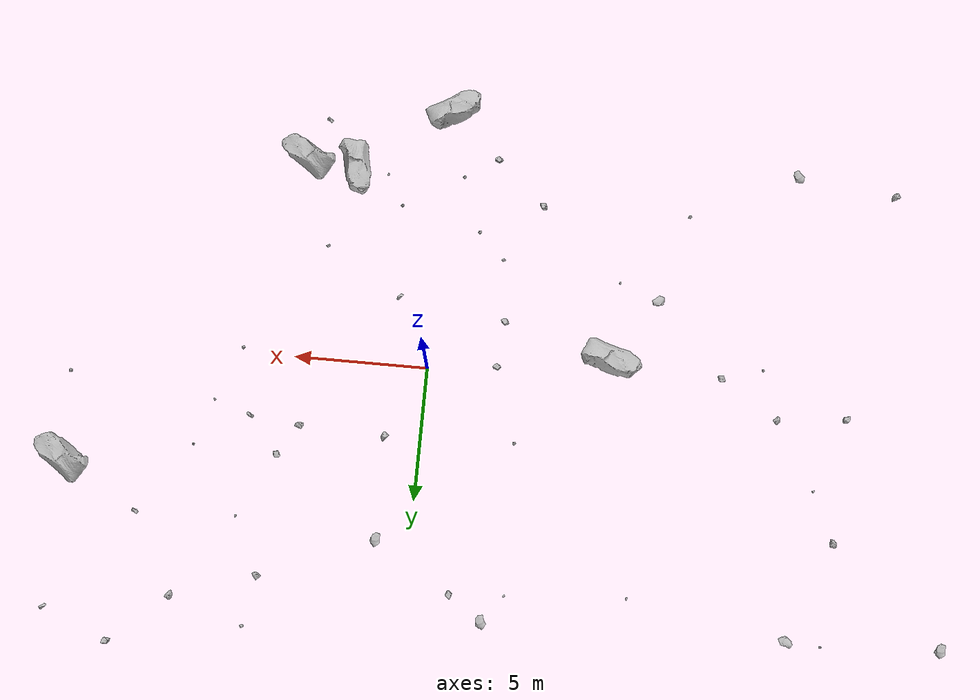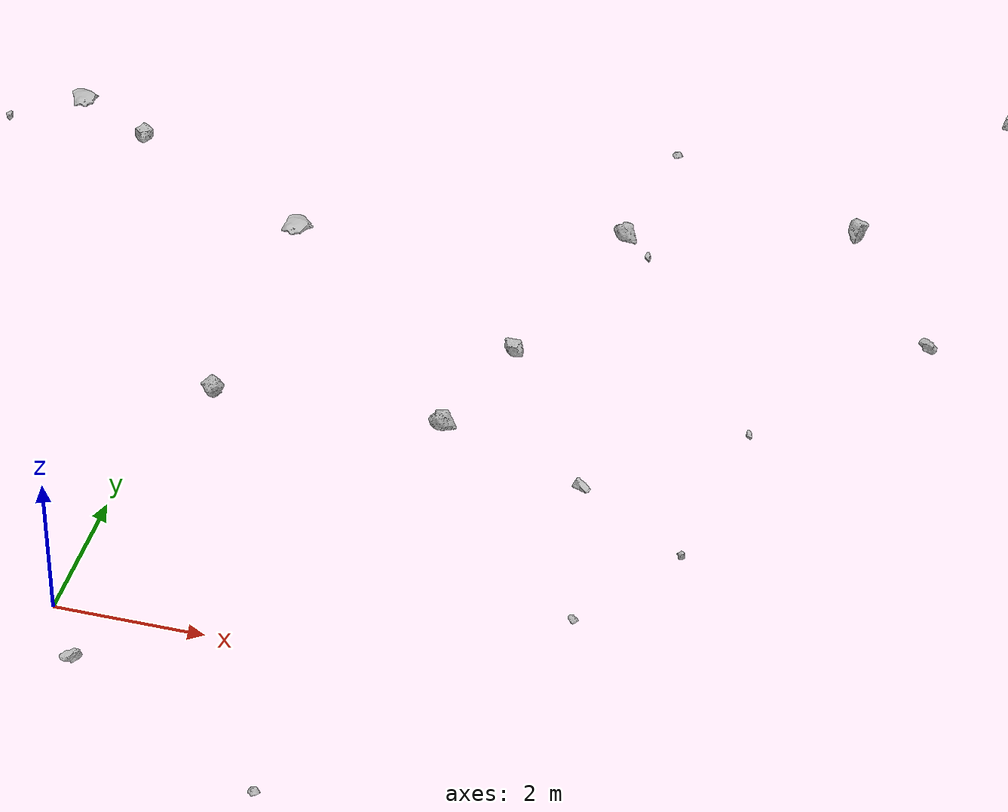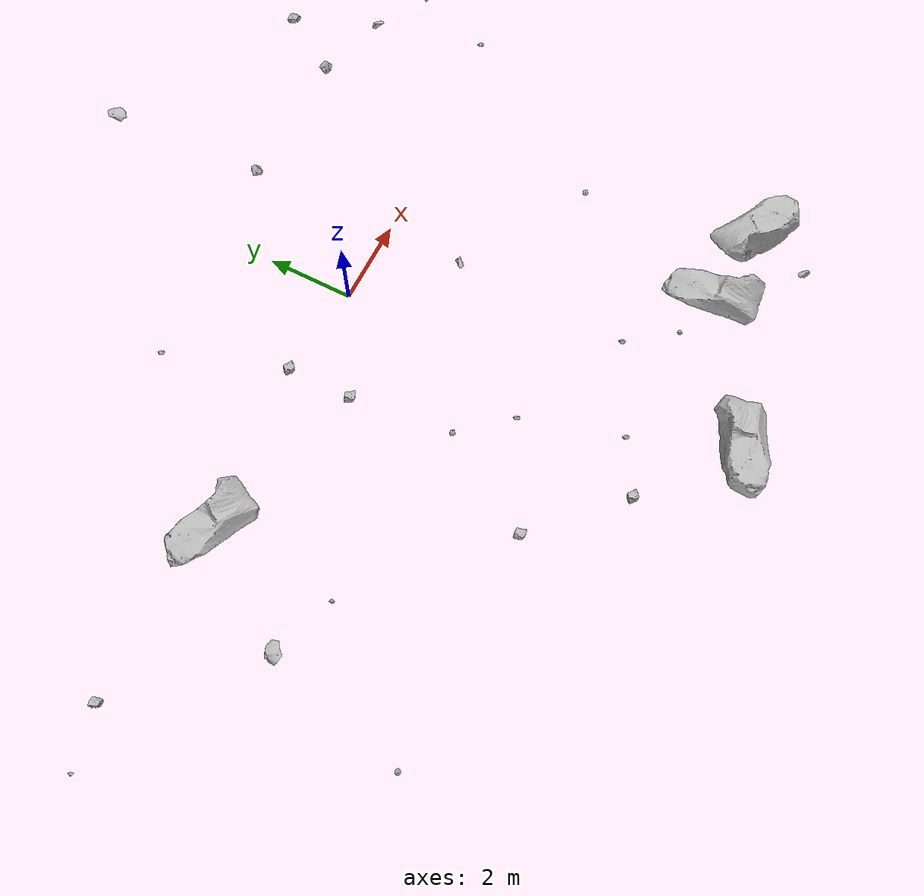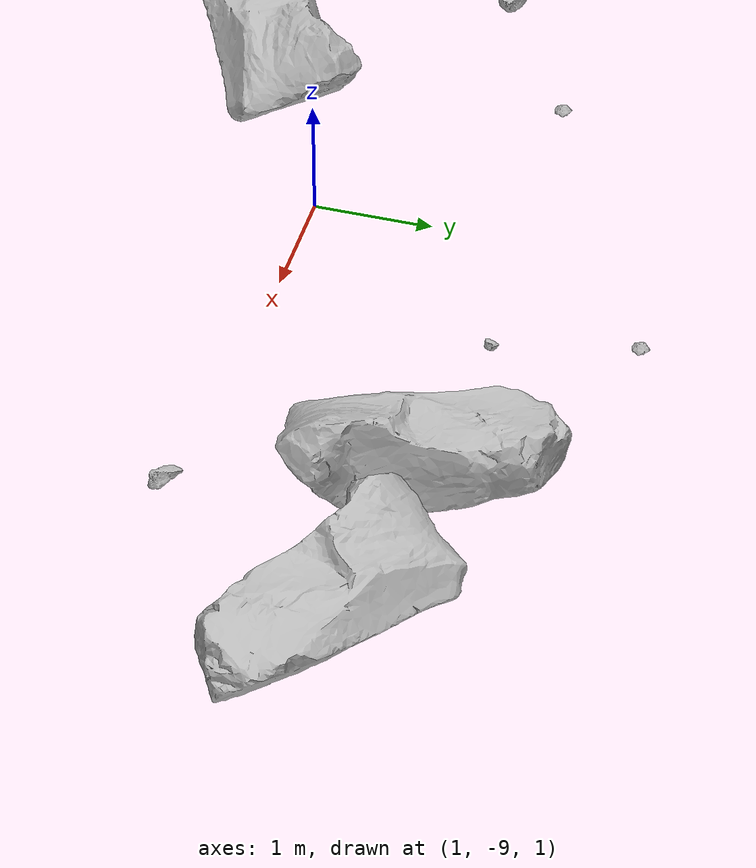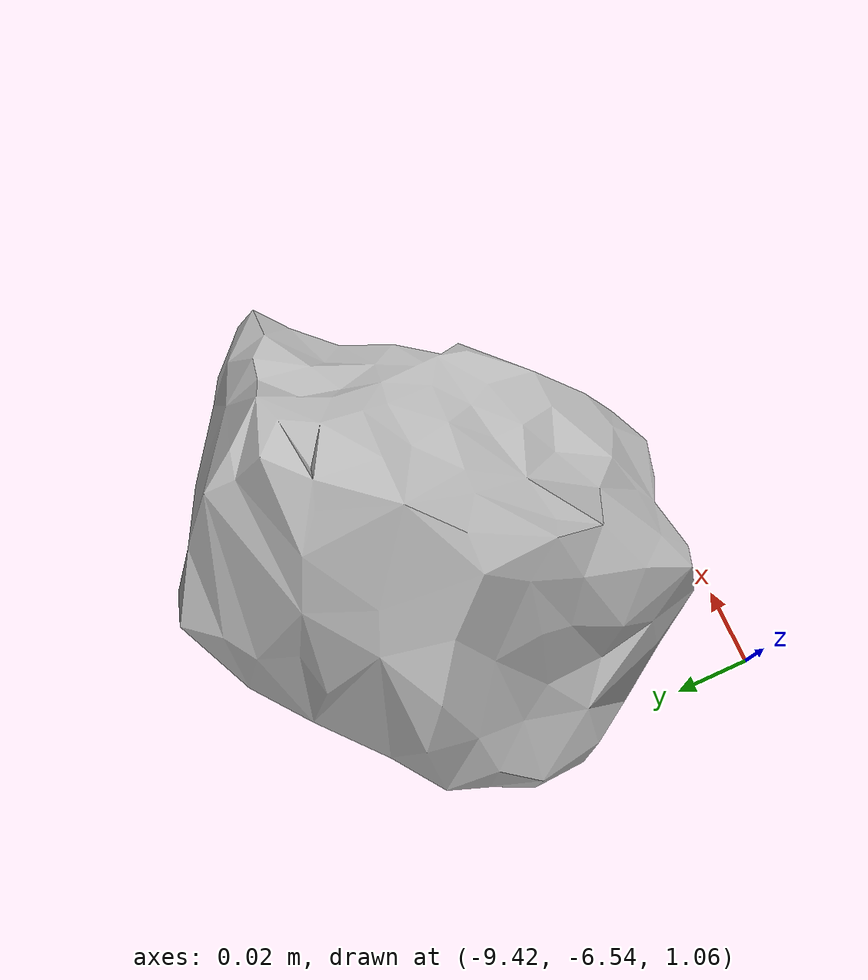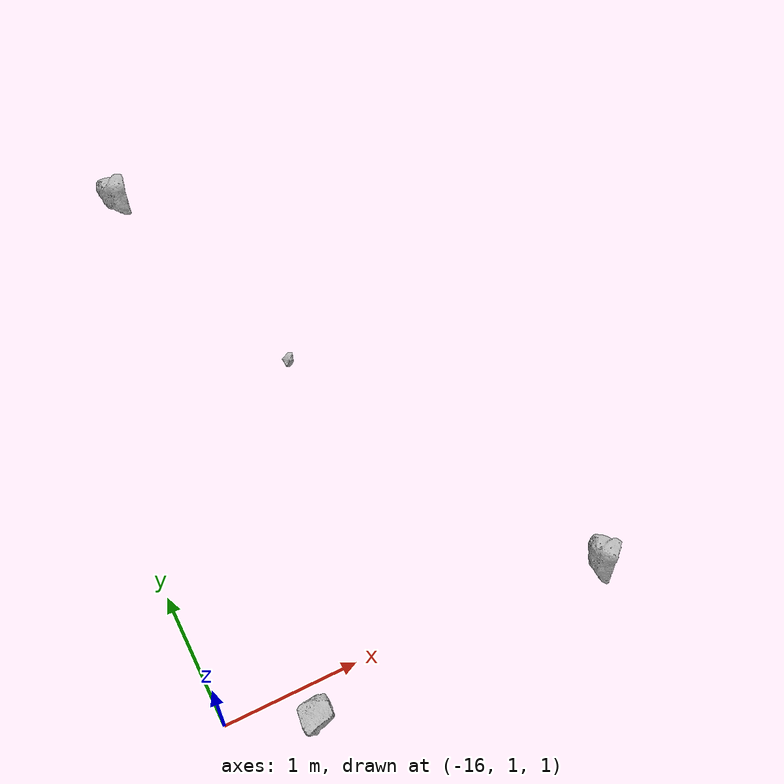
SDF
<sdf version="1.7">
 <world name="marsyard">
  <gravity>0 0 -9.81</gravity>
  <physics name="dart_physics" type="ignored">
   <max_step_size>0.003</max_step_size>
   <real_time_update_rate>333</real_time_update_rate>
   <real_time_factor>1.0</real_time_factor>
  </physics>
  <plugin filename="ignition-gazebo-physics-system" name="ignition::gazebo::systems::Physics"/>
  <plugin filename="ignition-gazebo-user-commands-system" name="ignition::gazebo::systems::UserCommands"/>
  <plugin filename="ignition-gazebo-scene-broadcaster-system" name="ignition::gazebo::systems::SceneBroadcaster"/>
  <plugin filename="ignition-gazebo-contact-system" name="ignition::gazebo::systems::Contact"/>
  <scene>
   <ambient>0.95 0.95 0.95 1</ambient>
   <background>0.70 0.70 0.70 1</background>
   <shadows>false</shadows>
  </scene>
  <light type="directional" name="sun">
   <cast_shadows>false</cast_shadows>
   <pose>0 0 30 0 0 0</pose>
   <diffuse>1 1 1 1</diffuse>
   <specular>0.15 0.15 0.15 1</specular>
   <direction>-0.35 0.1 -0.93</direction>
  </light>
  <model name="Rock_3">
   <static>true</static>
   <pose>-3.4779 2.6703 0.8271 0.0000 0.0000 2.1719</pose>
   <link name="link">
    <visual name="visual">
     <geometry><mesh><uri>package://rock_generator/rocks_ws/rock_5/meshes/rock_5.stl</uri></mesh></geometry>
    </visual>
    <collision name="collision">
     <geometry><mesh><uri>package://rock_generator/rocks_ws/rock_5/meshes/rock_5.stl</uri></mesh></geometry>
    </collision>
   </link>
  </model>
  <model name="Rock_4">
   <static>true</static>
   <pose>-1.6406 8.3107 1.0749 0.0000 0.0000 0.2466</pose>
   <link name="link">
    <visual name="visual">
     <geometry><mesh><uri>package://rock_generator/rocks_ws/rock_1/meshes/rock_1.stl</uri></mesh></geometry>
    </visual>
    <collision name="collision">
     <geometry><mesh><uri>package://rock_generator/rocks_ws/rock_1/meshes/rock_1.stl</uri></mesh></geometry>
    </collision>
   </link>
  </model>
  <model name="Rock_5">
   <static>true</static>
   <pose>1.1729 -2.2894 1.5332 0.0000 0.0000 -2.4850</pose>
   <link name="link">
    <visual name="visual">
     <geometry><mesh><uri>package://rock_generator/rocks_ws/rock_6/meshes/rock_6.stl</uri></mesh></geometry>
    </visual>
   </link>
  </model>
  <model name="Rock_6">
   <static>true</static>
   <pose>7.9994 3.8192 1.4746 0.0000 0.0000 1.8166</pose>
   <link name="link">
    <visual name="visual">
     <geometry><mesh><uri>package://rock_generator/rocks_ws/rock_9/meshes/rock_9.stl</uri></mesh></geometry>
    </visual>
    <collision name="collision">
     <geometry><mesh><uri>package://rock_generator/rocks_ws/rock_9/meshes/rock_9.stl</uri></mesh></geometry>
    </collision>
   </link>
  </model>
  <model name="Rock_8">
   <static>true</static>
   <pose>1.1551 6.6159 1.3369 0.0000 0.0000 1.2260</pose>
   <link name="link">
    <visual name="visual">
     <geometry><mesh><uri>package://rock_generator/rocks_ws/rock_8/meshes/rock_8.stl</uri></mesh></geometry>
    </visual>
   </link>
  </model>
  <model name="Rock_9">
   <static>true</static>
   <pose>-1.5332 -5.0821 1.3396 0.0000 0.0000 2.2606</pose>
   <link name="link">
    <visual name="visual">
     <geometry><mesh><uri>package://rock_generator/rocks_ws/rock_5/meshes/rock_5.stl</uri></mesh></geometry>
    </visual>
    <collision name="collision">
     <geometry><mesh><uri>package://rock_generator/rocks_ws/rock_5/meshes/rock_5.stl</uri></mesh></geometry>
    </collision>
   </link>
  </model>
  <model name="Rock_11">
   <static>true</static>
   <pose>-15.4241 0.7525 1.0952 0.0000 0.0000 2.3132</pose>
   <link name="link">
    <visual name="visual">
     <geometry><mesh><uri>package://rock_generator/rocks_ws/rock_1/meshes/rock_1.stl</uri></mesh></geometry>
    </visual>
    <collision name="collision">
     <geometry><mesh><uri>package://rock_generator/rocks_ws/rock_1/meshes/rock_1.stl</uri></mesh></geometry>
    </collision>
   </link>
  </model>
  <model name="Rock_12">
   <static>true</static>
   <pose>6.0519 6.2983 2.0424 0.0000 0.0000 1.4544</pose>
   <link name="link">
    <visual name="visual">
     <geometry><mesh><uri>package://rock_generator/rocks_ws/rock_9/meshes/rock_9.stl</uri></mesh></geometry>
    </visual>
    <collision name="collision">
     <geometry><mesh><uri>package://rock_generator/rocks_ws/rock_9/meshes/rock_9.stl</uri></mesh></geometry>
    </collision>
   </link>
  </model>
  <model name="Rock_13">
   <static>true</static>
   <pose>-8.3751 -3.0617 1.1417 0.0000 0.0000 -2.7757</pose>
   <link name="link">
    <visual name="visual">
     <geometry><mesh><uri>package://rock_generator/rocks_ws/rock_8/meshes/rock_8.stl</uri></mesh></geometry>
    </visual>
    <collision name="collision">
     <geometry><mesh><uri>package://rock_generator/rocks_ws/rock_8/meshes/rock_8.stl</uri></mesh></geometry>
    </collision>
   </link>
  </model>
  <model name="Rock_14">
   <static>true</static>
   <pose>-12.9137 0.8854 0.7748 0.0000 0.0000 0.7755</pose>
   <link name="link">
    <visual name="visual">
     <geometry><mesh><uri>package://rock_generator/rocks_ws/rock_3/meshes/rock_3.stl</uri></mesh></geometry>
    </visual>
    <collision name="collision">
     <geometry><mesh><uri>package://rock_generator/rocks_ws/rock_3/meshes/rock_3.stl</uri></mesh></geometry>
    </collision>
   </link>
  </model>
  <model name="Rock_15">
   <static>true</static>
   <pose>-13.4837 -8.6336 0.5553 0.0000 0.0000 2.0042</pose>
   <link name="link">
    <visual name="visual">
     <geometry><mesh><uri>package://rock_generator/rocks_ws/rock_8/meshes/rock_8.stl</uri></mesh></geometry>
    </visual>
    <collision name="collision">
     <geometry><mesh><uri>package://rock_generator/rocks_ws/rock_8/meshes/rock_8.stl</uri></mesh></geometry>
    </collision>
   </link>
  </model>
  <model name="Rock_17">
   <static>true</static>
   <pose>12.8350 1.5183 1.4208 0.0000 0.0000 3.0524</pose>
   <link name="link">
    <visual name="visual">
     <geometry><mesh><uri>package://rock_generator/rocks_ws/rock_5/meshes/rock_5.stl</uri></mesh></geometry>
    </visual>
    <collision name="collision">
     <geometry><mesh><uri>package://rock_generator/rocks_ws/rock_5/meshes/rock_5.stl</uri></mesh></geometry>
    </collision>
   </link>
  </model>
  <model name="Rock_18">
   <static>true</static>
   <pose>-2.7368 -1.7044 1.3565 0.0000 0.0000 -1.9450</pose>
   <link name="link">
    <visual name="visual">
     <geometry><mesh><uri>package://rock_generator/rocks_ws/rock_1/meshes/rock_1.stl</uri></mesh></geometry>
    </visual>
    <collision name="collision">
     <geometry><mesh><uri>package://rock_generator/rocks_ws/rock_1/meshes/rock_1.stl</uri></mesh></geometry>
    </collision>
   </link>
  </model>
  <model name="Rock_19">
   <static>true</static>
   <pose>-6.8949 -3.6088 1.2117 0.0000 0.0000 -1.5957</pose>
   <link name="link">
    <visual name="visual">
     <geometry><mesh><uri>package://rock_generator/rocks_ws/rock_9/meshes/rock_9.stl</uri></mesh></geometry>
    </visual>
    <collision name="collision">
     <geometry><mesh><uri>package://rock_generator/rocks_ws/rock_9/meshes/rock_9.stl</uri></mesh></geometry>
    </collision>
   </link>
  </model>
  <model name="Rock_20">
   <static>true</static>
   <pose>8.3604 9.1357 0.7755 0.0000 0.0000 1.0500</pose>
   <link name="link">
    <visual name="visual">
     <geometry><mesh><uri>package://rock_generator/rocks_ws/rock_3/meshes/rock_3.stl</uri></mesh></geometry>
    </visual>
    <collision name="collision">
     <geometry><mesh><uri>package://rock_generator/rocks_ws/rock_3/meshes/rock_3.stl</uri></mesh></geometry>
    </collision>
   </link>
  </model>
  <model name="Rock_23">
   <static>true</static>
   <pose>-2.5905 -0.0642 0.9604 0.0000 0.0000 -1.5241</pose>
   <link name="link">
    <visual name="visual">
     <geometry><mesh><uri>package://rock_generator/rocks_ws/rock_1/meshes/rock_1.stl</uri></mesh></geometry>
    </visual>
    <collision name="collision">
     <geometry><mesh><uri>package://rock_generator/rocks_ws/rock_1/meshes/rock_1.stl</uri></mesh></geometry>
    </collision>
   </link>
  </model>
  <model name="Rock_25">
   <static>true</static>
   <pose>-1.9799 -8.0369 1.1732 0.0000 0.0000 -1.5710</pose>
   <link name="link">
    <visual name="visual">
     <geometry><mesh><uri>package://rock_generator/rocks_ws/rock_1/meshes/rock_1.stl</uri></mesh></geometry>
    </visual>
    <collision name="collision">
     <geometry><mesh><uri>package://rock_generator/rocks_ws/rock_1/meshes/rock_1.stl</uri></mesh></geometry>
    </collision>
   </link>
  </model>
  <model name="Rock_27">
   <static>true</static>
   <pose>2.1550 -7.2256 0.8793 0.0000 0.0000 -1.8058</pose>
   <link name="link">
    <visual name="visual">
     <geometry><mesh><uri>package://rock_generator/rocks_ws/rock_9/meshes/rock_9.stl</uri></mesh></geometry>
    </visual>
    <collision name="collision">
     <geometry><mesh><uri>package://rock_generator/rocks_ws/rock_9/meshes/rock_9.stl</uri></mesh></geometry>
    </collision>
   </link>
  </model>
  <model name="Rock_29">
   <static>true</static>
   <pose>4.3001 2.9210 1.6593 0.0000 0.0000 2.7722</pose>
   <link name="link">
    <visual name="visual">
     <geometry><mesh><uri>package://rock_generator/rocks_ws/rock_3/meshes/rock_3.stl</uri></mesh></geometry>
    </visual>
    <collision name="collision">
     <geometry><mesh><uri>package://rock_generator/rocks_ws/rock_3/meshes/rock_3.stl</uri></mesh></geometry>
    </collision>
   </link>
  </model>
  <model name="Rock_30">
   <static>true</static>
   <pose>3.4007 -7.4353 0.5935 0.0000 0.0000 -1.1864</pose>
   <link name="link">
    <visual name="visual">
     <geometry><mesh><uri>package://rock_generator/rocks_ws/rock_4/meshes/rock_4.stl</uri></mesh></geometry>
    </visual>
    <collision name="collision">
     <geometry><mesh><uri>package://rock_generator/rocks_ws/rock_4/meshes/rock_4.stl</uri></mesh></geometry>
    </collision>
   </link>
  </model>
  <model name="Rock_31">
   <static>true</static>
   <pose>5.5586 10.0199 0.9261 0.0000 0.0000 0.4094</pose>
   <link name="link">
    <visual name="visual">
     <geometry><mesh><uri>package://rock_generator/rocks_ws/rock_5/meshes/rock_5.stl</uri></mesh></geometry>
    </visual>
   </link>
  </model>
  <model name="Rock_32">
   <static>true</static>
   <pose>-7.8735 7.8798 1.1958 0.0000 0.0000 -1.9543</pose>
   <link name="link">
    <visual name="visual">
     <geometry><mesh><uri>package://rock_generator/rocks_ws/rock_9/meshes/rock_9.stl</uri></mesh></geometry>
    </visual>
   </link>
  </model>
  <model name="Rock_34">
   <static>true</static>
   <pose>12.6852 4.6307 1.2312 0.0000 0.0000 2.6786</pose>
   <link name="link">
    <visual name="visual">
     <geometry><mesh><uri>package://rock_generator/rocks_ws/rock_4/meshes/rock_4.stl</uri></mesh></geometry>
    </visual>
    <collision name="collision">
     <geometry><mesh><uri>package://rock_generator/rocks_ws/rock_4/meshes/rock_4.stl</uri></mesh></geometry>
    </collision>
   </link>
  </model>
  <model name="Rock_35">
   <static>true</static>
   <pose>4.8621 3.9958 2.0246 0.0000 0.0000 0.9742</pose>
   <link name="link">
    <visual name="visual">
     <geometry><mesh><uri>package://rock_generator/rocks_ws/rock_1/meshes/rock_1.stl</uri></mesh></geometry>
    </visual>
   </link>
  </model>
  <model name="Rock_36">
   <static>true</static>
   <pose>-2.5050 -4.0591 1.4282 0.0000 0.0000 0.4405</pose>
   <link name="link">
    <visual name="visual">
     <geometry><mesh><uri>package://rock_generator/rocks_ws/rock_5/meshes/rock_5.stl</uri></mesh></geometry>
    </visual>
    <collision name="collision">
     <geometry><mesh><uri>package://rock_generator/rocks_ws/rock_5/meshes/rock_5.stl</uri></mesh></geometry>
    </collision>
   </link>
  </model>
  <model name="Rock_38">
   <static>true</static>
   <pose>-14.7402 8.9398 1.0849 0.0000 0.0000 2.9611</pose>
   <link name="link">
    <visual name="visual">
     <geometry><mesh><uri>package://rock_generator/rocks_ws/rock_9/meshes/rock_9.stl</uri></mesh></geometry>
    </visual>
   </link>
  </model>
  <model name="Rock_39">
   <static>true</static>
   <pose>6.1524 2.5513 1.2589 0.0000 0.0000 -0.6978</pose>
   <link name="link">
    <visual name="visual">
     <geometry><mesh><uri>package://rock_generator/rocks_ws/rock_6/meshes/rock_6.stl</uri></mesh></geometry>
    </visual>
    <collision name="collision">
     <geometry><mesh><uri>package://rock_generator/rocks_ws/rock_6/meshes/rock_6.stl</uri></mesh></geometry>
    </collision>
   </link>
  </model>
  <model name="Rock_40">
   <static>true</static>
   <pose>-12.3470 -0.7936 1.0946 0.0000 0.0000 1.8460</pose>
   <link name="link">
    <visual name="visual">
     <geometry><mesh><uri>package://rock_generator/rocks_ws/rock_9/meshes/rock_9.stl</uri></mesh></geometry>
    </visual>
    <collision name="collision">
     <geometry><mesh><uri>package://rock_generator/rocks_ws/rock_9/meshes/rock_9.stl</uri></mesh></geometry>
    </collision>
   </link>
  </model>
  <model name="Rock_41">
   <static>true</static>
   <pose>-13.5358 8.8562 1.0843 0.0000 0.0000 -0.6233</pose>
   <link name="link">
    <visual name="visual">
     <geometry><mesh><uri>package://rock_generator/rocks_ws/rock_8/meshes/rock_8.stl</uri></mesh></geometry>
    </visual>
    <collision name="collision">
     <geometry><mesh><uri>package://rock_generator/rocks_ws/rock_8/meshes/rock_8.stl</uri></mesh></geometry>
    </collision>
   </link>
  </model>
  <model name="Rock_42">
   <static>true</static>
   <pose>-10.8875 -0.3887 0.8808 0.0000 0.0000 0.9033</pose>
   <link name="link">
    <visual name="visual">
     <geometry><mesh><uri>package://rock_generator/rocks_ws/rock_1/meshes/rock_1.stl</uri></mesh></geometry>
    </visual>
   </link>
  </model>
  <model name="Rock_43">
   <static>true</static>
   <pose>-0.1839 -9.7083 1.5481 0.0000 0.0000 0.6495</pose>
   <link name="link">
    <visual name="visual">
     <geometry><mesh><uri>package://rock_generator/rocks_ws/rock_4/meshes/rock_4.stl</uri></mesh></geometry>
    </visual>
   </link>
  </model>
  <model name="Rock_44">
   <static>true</static>
   <pose>5.3531 8.2876 0.8243 0.0000 0.0000 2.2742</pose>
   <link name="link">
    <visual name="visual">
     <geometry><mesh><uri>package://rock_generator/rocks_ws/rock_3/meshes/rock_3.stl</uri></mesh></geometry>
    </visual>
    <collision name="collision">
     <geometry><mesh><uri>package://rock_generator/rocks_ws/rock_3/meshes/rock_3.stl</uri></mesh></geometry>
    </collision>
   </link>
  </model>
  <model name="Rock_45">
   <static>true</static>
   <pose>-2.8052 9.1421 0.9216 0.0000 0.0000 1.6523</pose>
   <link name="link">
    <visual name="visual">
     <geometry><mesh><uri>package://rock_generator/rocks_ws/rock_8/meshes/rock_8.stl</uri></mesh></geometry>
    </visual>
    <collision name="collision">
     <geometry><mesh><uri>package://rock_generator/rocks_ws/rock_8/meshes/rock_8.stl</uri></mesh></geometry>
    </collision>
   </link>
  </model>
  <model name="Rock_47">
   <static>true</static>
   <pose>-18.8821 8.6896 1.2407 0.0000 0.0000 1.2271</pose>
   <link name="link">
    <visual name="visual">
     <geometry><mesh><uri>package://rock_generator/rocks_ws/rock_8/meshes/rock_8.stl</uri></mesh></geometry>
    </visual>
    <collision name="collision">
     <geometry><mesh><uri>package://rock_generator/rocks_ws/rock_8/meshes/rock_8.stl</uri></mesh></geometry>
    </collision>
   </link>
  </model>
  <model name="Rock_50">
   <static>true</static>
   <pose>5.3006 -7.7117 0.7543 0.0000 0.0000 2.7384</pose>
   <link name="link">
    <visual name="visual">
     <geometry><mesh><uri>package://rock_generator/rocks_ws/rock_4/meshes/rock_4.stl</uri></mesh></geometry>
    </visual>
    <collision name="collision">
     <geometry><mesh><uri>package://rock_generator/rocks_ws/rock_4/meshes/rock_4.stl</uri></mesh></geometry>
    </collision>
   </link>
  </model>
  <model name="Rock_51">
   <static>true</static>
   <pose>-14.9790 5.2902 1.1333 0.0000 0.0000 1.4102</pose>
   <link name="link">
    <visual name="visual">
     <geometry><mesh><uri>package://rock_generator/rocks_ws/rock_3/meshes/rock_3.stl</uri></mesh></geometry>
    </visual>
    <collision name="collision">
     <geometry><mesh><uri>package://rock_generator/rocks_ws/rock_3/meshes/rock_3.stl</uri></mesh></geometry>
    </collision>
   </link>
  </model>
  <model name="Rock_52">
   <static>true</static>
   <pose>-3.8068 -6.3426 1.1895 0.0000 0.0000 -2.2149</pose>
   <link name="link">
    <visual name="visual">
     <geometry><mesh><uri>package://rock_generator/rocks_ws/rock_1/meshes/rock_1.stl</uri></mesh></geometry>
    </visual>
    <collision name="collision">
     <geometry><mesh><uri>package://rock_generator/rocks_ws/rock_1/meshes/rock_1.stl</uri></mesh></geometry>
    </collision>
   </link>
  </model>
  <model name="Rock_54">
   <static>true</static>
   <pose>6.6973 0.0928 1.3419 0.0000 0.0000 2.3113</pose>
   <link name="link">
    <visual name="visual">
     <geometry><mesh><uri>package://rock_generator/rocks_ws/rock_5/meshes/rock_5.stl</uri></mesh></geometry>
    </visual>
    <collision name="collision">
     <geometry><mesh><uri>package://rock_generator/rocks_ws/rock_5/meshes/rock_5.stl</uri></mesh></geometry>
    </collision>
   </link>
  </model>
  <model name="Rock_55">
   <static>true</static>
   <pose>-0.7504 -7.3035 1.0600 0.0000 0.0000 2.4450</pose>
   <link name="link">
    <visual name="visual">
     <geometry><mesh><uri>package://rock_generator/rocks_ws/rock_5/meshes/rock_5.stl</uri></mesh></geometry>
    </visual>
    <collision name="collision">
     <geometry><mesh><uri>package://rock_generator/rocks_ws/rock_5/meshes/rock_5.stl</uri></mesh></geometry>
    </collision>
   </link>
  </model>
  <model name="Rock_57">
   <static>true</static>
   <pose>4.5648 -9.0968 1.2276 0.0000 0.0000 2.3627</pose>
   <link name="link">
    <visual name="visual">
     <geometry><mesh><uri>package://rock_generator/rocks_ws/rock_6/meshes/rock_6.stl</uri></mesh></geometry>
    </visual>
    <collision name="collision">
     <geometry><mesh><uri>package://rock_generator/rocks_ws/rock_6/meshes/rock_6.stl</uri></mesh></geometry>
    </collision>
   </link>
  </model>
  <model name="Rock_58">
   <static>true</static>
   <pose>10.0538 10.9624 1.6131 0.0000 0.0000 -1.0630</pose>
   <link name="link">
    <visual name="visual">
     <geometry><mesh><uri>package://rock_generator/rocks_ws/rock_1/meshes/rock_1.stl</uri></mesh></geometry>
    </visual>
    <collision name="collision">
     <geometry><mesh><uri>package://rock_generator/rocks_ws/rock_1/meshes/rock_1.stl</uri></mesh></geometry>
    </collision>
   </link>
  </model>
  <model name="Rock_59">
   <static>true</static>
   <pose>1.1350 2.9974 1.4631 0.0000 0.0000 -2.3516</pose>
   <link name="link">
    <visual name="visual">
     <geometry><mesh><uri>package://rock_generator/rocks_ws/rock_3/meshes/rock_3.stl</uri></mesh></geometry>
    </visual>
   </link>
  </model>
  <model name="Rock_60">
   <static>true</static>
   <pose>12.6108 9.9708 1.0703 0.0000 0.0000 -2.6328</pose>
   <link name="link">
    <visual name="visual">
     <geometry><mesh><uri>package://rock_generator/rocks_ws/rock_6/meshes/rock_6.stl</uri></mesh></geometry>
    </visual>
    <collision name="collision">
     <geometry><mesh><uri>package://rock_generator/rocks_ws/rock_6/meshes/rock_6.stl</uri></mesh></geometry>
    </collision>
   </link>
  </model>
  <model name="Rock_61">
   <static>true</static>
   <pose>-17.0514 -7.8214 1.1768 0.0000 0.0000 -2.7836</pose>
   <link name="link">
    <visual name="visual">
     <geometry><mesh><uri>package://rock_generator/rocks_ws/rock_3/meshes/rock_3.stl</uri></mesh></geometry>
    </visual>
    <collision name="collision">
     <geometry><mesh><uri>package://rock_generator/rocks_ws/rock_3/meshes/rock_3.stl</uri></mesh></geometry>
    </collision>
   </link>
  </model>
  <model name="Rock_62">
   <static>true</static>
   <pose>9.7872 6.3628 1.3083 0.0000 0.0000 2.4819</pose>
   <link name="link">
    <visual name="visual">
     <geometry><mesh><uri>package://rock_generator/rocks_ws/rock_6/meshes/rock_6.stl</uri></mesh></geometry>
    </visual>
   </link>
  </model>
  <model name="Rock_63">
   <static>true</static>
   <pose>-14.3770 3.4544 0.8244 0.0000 0.0000 0.3969</pose>
   <link name="link">
    <visual name="visual">
     <geometry><mesh><uri>package://rock_generator/rocks_ws/rock_9/meshes/rock_9.stl</uri></mesh></geometry>
    </visual>
    <collision name="collision">
     <geometry><mesh><uri>package://rock_generator/rocks_ws/rock_9/meshes/rock_9.stl</uri></mesh></geometry>
    </collision>
   </link>
  </model>
  <model name="Rock_64">
   <static>true</static>
   <pose>-3.5531 8.1814 1.1537 0.0000 0.0000 0.7559</pose>
   <link name="link">
    <visual name="visual">
     <geometry><mesh><uri>package://rock_generator/rocks_ws/rock_9/meshes/rock_9.stl</uri></mesh></geometry>
    </visual>
    <collision name="collision">
     <geometry><mesh><uri>package://rock_generator/rocks_ws/rock_9/meshes/rock_9.stl</uri></mesh></geometry>
    </collision>
   </link>
  </model>
  <model name="Rock_66">
   <static>true</static>
   <pose>-9.3560 -6.4773 1.0801 0.0000 0.0000 0.7915</pose>
   <link name="link">
    <visual name="visual">
     <geometry><mesh><uri>package://rock_generator/rocks_ws/rock_5/meshes/rock_5.stl</uri></mesh></geometry>
    </visual>
   </link>
  </model>
  <model name="Rock_67">
   <static>true</static>
   <pose>1.5311 -6.1365 0.5679 0.0000 0.0000 2.1880</pose>
   <link name="link">
    <visual name="visual">
     <geometry><mesh><uri>package://rock_generator/rocks_ws/rock_5/meshes/rock_5.stl</uri></mesh></geometry>
    </visual>
    <collision name="collision">
     <geometry><mesh><uri>package://rock_generator/rocks_ws/rock_5/meshes/rock_5.stl</uri></mesh></geometry>
    </collision>
   </link>
  </model>
  <model name="Rock_68">
   <static>true</static>
   <pose>-6.7496 -0.6126 1.3208 0.0000 0.0000 -0.1725</pose>
   <link name="link">
    <visual name="visual">
     <geometry><mesh><uri>package://rock_generator/rocks_ws/rock_4/meshes/rock_4.stl</uri></mesh></geometry>
    </visual>
   </link>
  </model>
  <model name="Rock_69">
   <static>true</static>
   <pose>4.0001 -3.9687 1.6351 0.0000 0.0000 0.5351</pose>
   <link name="link">
    <visual name="visual">
     <geometry><mesh><uri>package://rock_generator/rocks_ws/rock_5/meshes/rock_5.stl</uri></mesh></geometry>
    </visual>
    <collision name="collision">
     <geometry><mesh><uri>package://rock_generator/rocks_ws/rock_5/meshes/rock_5.stl</uri></mesh></geometry>
    </collision>
   </link>
  </model>
  <model name="Rock_70">
   <static>true</static>
   <pose>7.5751 2.0279 0.8974 0.0000 0.0000 -0.6499</pose>
   <link name="link">
    <visual name="visual">
     <geometry><mesh><uri>package://rock_generator/rocks_ws/rock_9/meshes/rock_9.stl</uri></mesh></geometry>
    </visual>
    <collision name="collision">
     <geometry><mesh><uri>package://rock_generator/rocks_ws/rock_9/meshes/rock_9.stl</uri></mesh></geometry>
    </collision>
   </link>
  </model>
 </world>
</sdf>
